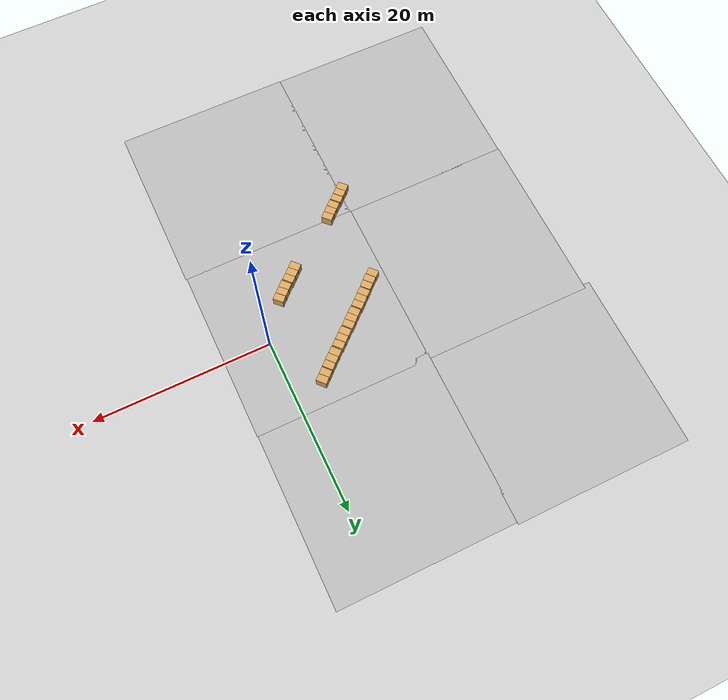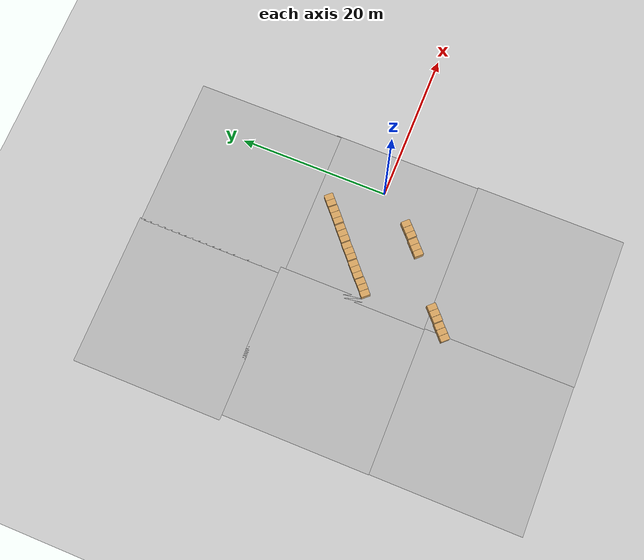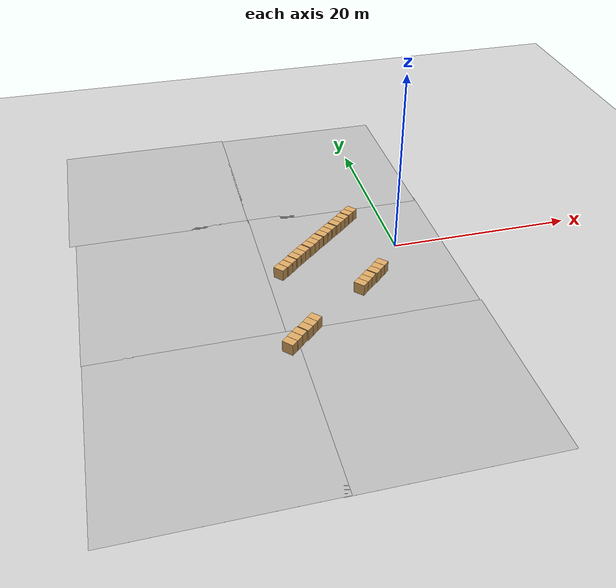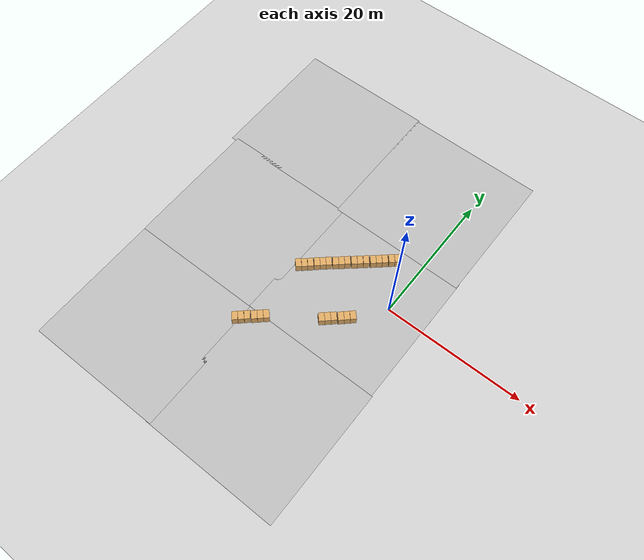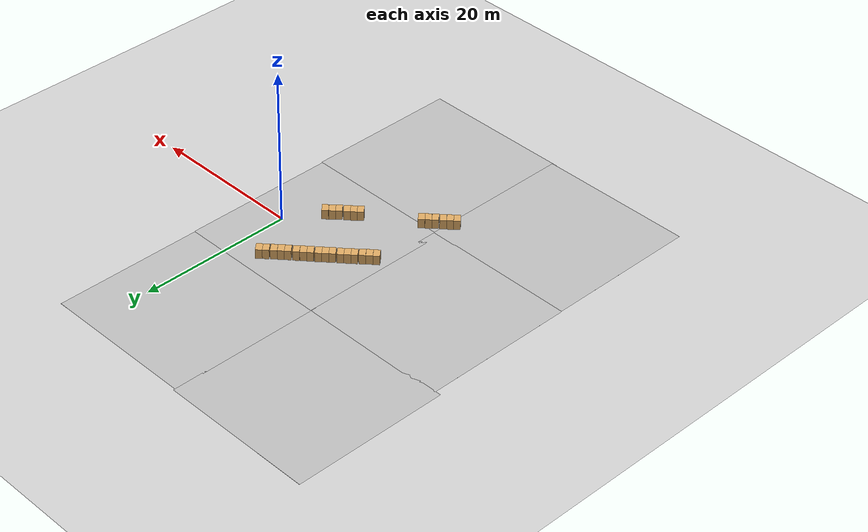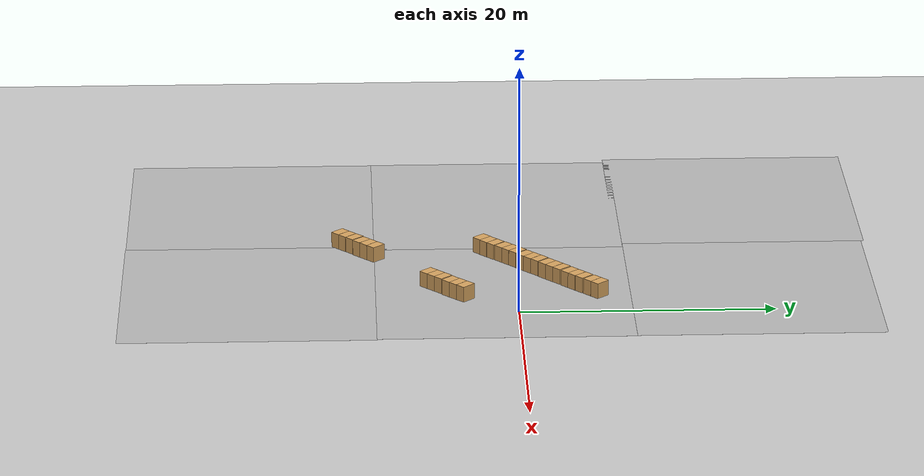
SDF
<sdf version="1.6">
 <world name="default">
  <model name="ground_plane">
   <static>1</static>
   <link name="link">
    <collision name="collision">
     <geometry><plane><normal>0 0 1</normal><size>100 100</size></plane></geometry>
     <surface><friction><ode><mu>100</mu><mu2>50</mu2></ode></friction></surface>
    </collision>
    <visual name="visual">
     <cast_shadows>0</cast_shadows>
     <geometry><plane><normal>0 0 1</normal><size>100 100</size></plane></geometry>
     <material>
      <script><uri>file://media/materials/scripts/gazebo.material</uri><name>Gazebo/Grey</name></script>
     </material>
    </visual>
   </link>
  </model>
  <model name="Floor_room">
   <link name="main">
    <pose>0 0 0.01 0 -0 0</pose>
    <collision name="main_Collision"><geometry><box><size>20 20 0.001</size></box></geometry></collision>
    <visual name="main_Visual">
     <geometry><box><size>20 20 0.001</size></box></geometry>
     <material>
      <script>
       <uri>model://Floor_room/materials/scripts</uri>
       <uri>model://Floor_room/materials/textures</uri>
       <name>floor_room</name>
      </script>
     </material>
    </visual>
   </link>
   <static>1</static>
   <pose>-4.76301 -1.10114 0 0 -0 0</pose>
  </model>
  <model name="Floor_room_0">
   <link name="main">
    <pose>0 0 0.01 0 -0 0</pose>
    <collision name="main_Collision"><geometry><box><size>20 20 0.001</size></box></geometry></collision>
    <visual name="main_Visual">
     <geometry><box><size>20 20 0.001</size></box></geometry>
     <material>
      <script>
       <uri>model://Floor_room/materials/scripts</uri>
       <uri>model://Floor_room/materials/textures</uri>
       <name>floor_room</name>
      </script>
     </material>
    </visual>
   </link>
   <static>1</static>
   <pose>-4.62785 -21.0624 0 0 -0 0</pose>
  </model>
  <model name="Floor_room_0_clone_2">
   <link name="main">
    <pose>0 0 0.01 0 -0 0</pose>
    <collision name="main_Collision"><geometry><box><size>20 20 0.001</size></box></geometry></collision>
    <visual name="main_Visual">
     <geometry><box><size>20 20 0.001</size></box></geometry>
     <material>
      <script>
       <uri>model://Floor_room/materials/scripts</uri>
       <uri>model://Floor_room/materials/textures</uri>
       <name>floor_room</name>
      </script>
     </material>
    </visual>
   </link>
   <static>1</static>
   <pose>-4.83743 18.2019 0 0 -0 0</pose>
  </model>
  <model name="Floor_room_0_clone_3">
   <link name="main">
    <pose>0 0 0.01 0 -0 0</pose>
    <collision name="main_Collision"><geometry><box><size>20 20 0.001</size></box></geometry></collision>
    <visual name="main_Visual">
     <geometry><box><size>20 20 0.001</size></box></geometry>
     <material>
      <script>
       <uri>model://Floor_room/materials/scripts</uri>
       <uri>model://Floor_room/materials/textures</uri>
       <name>floor_room</name>
      </script>
     </material>
    </visual>
   </link>
   <static>1</static>
   <pose>-23.9194 -21.0125 0 0 -0 0</pose>
  </model>
  <model name="Floor_room_0_clone_4">
   <link name="main">
    <pose>0 0 0.01 0 -0 0</pose>
    <collision name="main_Collision"><geometry><box><size>20 20 0.001</size></box></geometry></collision>
    <visual name="main_Visual">
     <geometry><box><size>20 20 0.001</size></box></geometry>
     <material>
      <script>
       <uri>model://Floor_room/materials/scripts</uri>
       <uri>model://Floor_room/materials/textures</uri>
       <name>floor_room</name>
      </script>
     </material>
    </visual>
   </link>
   <static>1</static>
   <pose>-23.9755 -1.11735 0 0 -0 0</pose>
  </model>
  <model name="Floor_room_0_clone_5">
   <link name="main">
    <pose>0 0 0.01 0 -0 0</pose>
    <collision name="main_Collision"><geometry><box><size>20 20 0.001</size></box></geometry></collision>
    <visual name="main_Visual">
     <geometry><box><size>20 20 0.001</size></box></geometry>
     <material>
      <script>
       <uri>model://Floor_room/materials/scripts</uri>
       <uri>model://Floor_room/materials/textures</uri>
       <name>floor_room</name>
      </script>
     </material>
    </visual>
   </link>
   <static>1</static>
   <pose>-24.6874 18.4261 0 0 -0 0</pose>
  </model>
  <model name="Big box 4_clone_1_clone_clone_3_clone_clone_1_clone_0_clone_clone_3_clone_0">
   <pose>-14.9655 -13.7703 0.635484 -0.001251 0.000808 -0.822952</pose>
   <static>0</static>
   <link name="link">
    <inertial>
     <mass>40</mass>
     <inertia><ixx>1</ixx><ixy>0</ixy><ixz>0</ixz><iyy>1</iyy><iyz>0</iyz><izz>1</izz></inertia>
    </inertial>
    <collision name="collision">
     <geometry><box><size>1.2 0.8 1.25</size></box></geometry>
     <surface><contact><ode><max_vel>0.1</max_vel><min_depth>0.001</min_depth></ode></contact></surface>
    </collision>
    <visual name="visual">
     <geometry><box><size>1.20 0.80 1.25</size></box></geometry>
     <material>
      <ambient>0.72 0.55 0.32 1</ambient>
      <diffuse>0.85 0.65 0.38 1</diffuse>
      <specular>0.1 0.1 0.1 1</specular>
     </material>
    </visual>
   </link>
  </model>
  <model name="Big box 4_clone_1_clone_clone_3_clone_clone_1_clone_0_clone_clone_3_clone_2">
   <pose>-13.7802 -12.6601 0.634999 -4e-06 -0.00083 -0.815678</pose>
   <static>0</static>
   <link name="link">
    <inertial>
     <mass>40</mass>
     <inertia><ixx>1</ixx><ixy>0</ixy><ixz>0</ixz><iyy>1</iyy><iyz>0</iyz><izz>1</izz></inertia>
    </inertial>
    <collision name="collision">
     <geometry><box><size>1.2 0.8 1.25</size></box></geometry>
     <surface><contact><ode><max_vel>0.1</max_vel><min_depth>0.001</min_depth></ode></contact></surface>
    </collision>
    <visual name="visual">
     <geometry><box><size>1.20 0.80 1.25</size></box></geometry>
     <material>
      <ambient>0.72 0.55 0.32 1</ambient>
      <diffuse>0.85 0.65 0.38 1</diffuse>
      <specular>0.1 0.1 0.1 1</specular>
     </material>
    </visual>
   </link>
  </model>
  <model name="Big box 4_clone_1_clone_clone_3_clone_clone_1_clone_0_clone_clone_3_clone_3">
   <pose>-13.0795 -12.0943 0.635015 0.001245 2.9e-05 -0.825603</pose>
   <static>0</static>
   <link name="link">
    <inertial>
     <mass>40</mass>
     <inertia><ixx>1</ixx><ixy>0</ixy><ixz>0</ixz><iyy>1</iyy><iyz>0</iyz><izz>1</izz></inertia>
    </inertial>
    <collision name="collision">
     <geometry><box><size>1.2 0.8 1.25</size></box></geometry>
     <surface><contact><ode><max_vel>0.1</max_vel><min_depth>0.001</min_depth></ode></contact></surface>
    </collision>
    <visual name="visual">
     <geometry><box><size>1.20 0.80 1.25</size></box></geometry>
     <material>
      <ambient>0.72 0.55 0.32 1</ambient>
      <diffuse>0.85 0.65 0.38 1</diffuse>
      <specular>0.1 0.1 0.1 1</specular>
     </material>
    </visual>
   </link>
  </model>
  <model name="Big box 4_clone_1_clone_clone_3_clone_clone_1_clone_0_clone_clone_3_clone_5">
   <pose>-12.4895 -11.5448 0.635491 -1.5e-05 1e-06 -0.814935</pose>
   <static>0</static>
   <link name="link">
    <inertial>
     <mass>40</mass>
     <inertia><ixx>1</ixx><ixy>0</ixy><ixz>0</ixz><iyy>1</iyy><iyz>0</iyz><izz>1</izz></inertia>
    </inertial>
    <collision name="collision">
     <geometry><box><size>1.2 0.8 1.25</size></box></geometry>
     <surface><contact><ode><max_vel>0.1</max_vel><min_depth>0.001</min_depth></ode></contact></surface>
    </collision>
    <visual name="visual">
     <geometry><box><size>1.20 0.80 1.25</size></box></geometry>
     <material>
      <ambient>0.72 0.55 0.32 1</ambient>
      <diffuse>0.85 0.65 0.38 1</diffuse>
      <specular>0.1 0.1 0.1 1</specular>
     </material>
    </visual>
   </link>
  </model>
  <model name="Big box 4_clone_1_clone_clone_3_clone_clone_1_clone_0_clone_clone_3_clone_4">
   <pose>-11.9042 -10.9927 0.635115 -0.000607 0.00062 -0.815722</pose>
   <static>0</static>
   <link name="link">
    <inertial>
     <mass>40</mass>
     <inertia><ixx>1</ixx><ixy>0</ixy><ixz>0</ixz><iyy>1</iyy><iyz>0</iyz><izz>1</izz></inertia>
    </inertial>
    <collision name="collision">
     <geometry><box><size>1.2 0.8 1.25</size></box></geometry>
     <surface><contact><ode><max_vel>0.1</max_vel><min_depth>0.001</min_depth></ode></contact></surface>
    </collision>
    <visual name="visual">
     <geometry><box><size>1.20 0.80 1.25</size></box></geometry>
     <material>
      <ambient>0.72 0.55 0.32 1</ambient>
      <diffuse>0.85 0.65 0.38 1</diffuse>
      <specular>0.1 0.1 0.1 1</specular>
     </material>
    </visual>
   </link>
  </model>
  <model name="Big box 4_clone_1_clone_clone_3_clone_clone_1_clone_0_clone_clone_3_clone_1">
   <pose>-14.3695 -13.2241 0.635492 1.9e-05 -0 -0.815638</pose>
   <static>0</static>
   <link name="link">
    <inertial>
     <mass>40</mass>
     <inertia><ixx>1</ixx><ixy>0</ixy><ixz>0</ixz><iyy>1</iyy><iyz>0</iyz><izz>1</izz></inertia>
    </inertial>
    <collision name="collision">
     <geometry><box><size>1.2 0.8 1.25</size></box></geometry>
     <surface><contact><ode><max_vel>0.1</max_vel><min_depth>0.001</min_depth></ode></contact></surface>
    </collision>
    <visual name="visual">
     <geometry><box><size>1.20 0.80 1.25</size></box></geometry>
     <material>
      <ambient>0.72 0.55 0.32 1</ambient>
      <diffuse>0.85 0.65 0.38 1</diffuse>
      <specular>0.1 0.1 0.1 1</specular>
     </material>
    </visual>
   </link>
  </model>
  <model name="big_box3_0_clone_clone_clone_clone_clone_clone_clone">
   <pose>-4.13717 -5.1949 0.635409 -0.001026 -0.000833 -0.806812</pose>
   <static>0</static>
   <link name="link">
    <inertial>
     <mass>40</mass>
     <inertia><ixx>1</ixx><ixy>0</ixy><ixz>0</ixz><iyy>1</iyy><iyz>0</iyz><izz>1</izz></inertia>
    </inertial>
    <collision name="collision">
     <geometry><box><size>1.2 0.8 1.25</size></box></geometry>
     <surface><contact><ode><max_vel>0.1</max_vel><min_depth>0.001</min_depth></ode></contact></surface>
    </collision>
    <visual name="visual">
     <geometry><box><size>1.20 0.80 1.25</size></box></geometry>
     <material>
      <ambient>0.72 0.55 0.32 1</ambient>
      <diffuse>0.85 0.65 0.38 1</diffuse>
      <specular>0.1 0.1 0.1 1</specular>
     </material>
    </visual>
   </link>
  </model>
  <model name="big_box3_0_clone_clone_clone_clone_clone_clone_clone_0">
   <pose>-3.55954 -4.64161 0.635163 -0.000435 -0.000816 -0.807648</pose>
   <static>0</static>
   <link name="link">
    <inertial>
     <mass>40</mass>
     <inertia><ixx>1</ixx><ixy>0</ixy><ixz>0</ixz><iyy>1</iyy><iyz>0</iyz><izz>1</izz></inertia>
    </inertial>
    <collision name="collision">
     <geometry><box><size>1.2 0.8 1.25</size></box></geometry>
     <surface><contact><ode><max_vel>0.1</max_vel><min_depth>0.001</min_depth></ode></contact></surface>
    </collision>
    <visual name="visual">
     <geometry><box><size>1.20 0.80 1.25</size></box></geometry>
     <material>
      <ambient>0.72 0.55 0.32 1</ambient>
      <diffuse>0.85 0.65 0.38 1</diffuse>
      <specular>0.1 0.1 0.1 1</specular>
     </material>
    </visual>
   </link>
  </model>
  <model name="big_box3_0_clone_clone_clone_clone_clone_clone_clone_clone_0">
   <pose>-6.01856 -6.87089 0.635486 -0.001027 -0.000706 -0.815375</pose>
   <static>0</static>
   <link name="link">
    <inertial>
     <mass>40</mass>
     <inertia><ixx>1</ixx><ixy>0</ixy><ixz>0</ixz><iyy>1</iyy><iyz>0</iyz><izz>1</izz></inertia>
    </inertial>
    <collision name="collision">
     <geometry><box><size>1.2 0.8 1.25</size></box></geometry>
     <surface><contact><ode><max_vel>0.1</max_vel><min_depth>0.001</min_depth></ode></contact></surface>
    </collision>
    <visual name="visual">
     <geometry><box><size>1.20 0.80 1.25</size></box></geometry>
     <material>
      <ambient>0.72 0.55 0.32 1</ambient>
      <diffuse>0.85 0.65 0.38 1</diffuse>
      <specular>0.1 0.1 0.1 1</specular>
     </material>
    </visual>
   </link>
  </model>
  <model name="big_box3_0_clone_clone_clone_clone_clone_clone_clone_clone_1">
   <pose>-5.43398 -6.32551 0.635439 -0.001103 -0.000833 -0.816094</pose>
   <static>0</static>
   <link name="link">
    <inertial>
     <mass>40</mass>
     <inertia><ixx>1</ixx><ixy>0</ixy><ixz>0</ixz><iyy>1</iyy><iyz>0</iyz><izz>1</izz></inertia>
    </inertial>
    <collision name="collision">
     <geometry><box><size>1.2 0.8 1.25</size></box></geometry>
     <surface><contact><ode><max_vel>0.1</max_vel><min_depth>0.001</min_depth></ode></contact></surface>
    </collision>
    <visual name="visual">
     <geometry><box><size>1.20 0.80 1.25</size></box></geometry>
     <material>
      <ambient>0.72 0.55 0.32 1</ambient>
      <diffuse>0.85 0.65 0.38 1</diffuse>
      <specular>0.1 0.1 0.1 1</specular>
     </material>
    </visual>
   </link>
  </model>
  <model name="big_box3_0_clone_clone_clone_clone_clone_clone_clone_clone">
   <pose>-4.84997 -5.77919 0.635309 -0.000777 -0.000831 -0.816933</pose>
   <static>0</static>
   <link name="link">
    <inertial>
     <mass>40</mass>
     <inertia><ixx>1</ixx><ixy>0</ixy><ixz>0</ixz><iyy>1</iyy><iyz>0</iyz><izz>1</izz></inertia>
    </inertial>
    <collision name="collision">
     <geometry><box><size>1.2 0.8 1.25</size></box></geometry>
     <surface><contact><ode><max_vel>0.1</max_vel><min_depth>0.001</min_depth></ode></contact></surface>
    </collision>
    <visual name="visual">
     <geometry><box><size>1.20 0.80 1.25</size></box></geometry>
     <material>
      <ambient>0.72 0.55 0.32 1</ambient>
      <diffuse>0.85 0.65 0.38 1</diffuse>
      <specular>0.1 0.1 0.1 1</specular>
     </material>
    </visual>
   </link>
  </model>
  <model name="big_box3_0_clone_clone_clone_clone_clone_clone_clone_clone_2">
   <pose>-2.97349 -4.08054 0.634999 2.3e-05 -0.000818 -0.807953</pose>
   <static>0</static>
   <link name="link">
    <inertial>
     <mass>40</mass>
     <inertia><ixx>1</ixx><ixy>0</ixy><ixz>0</ixz><iyy>1</iyy><iyz>0</iyz><izz>1</izz></inertia>
    </inertial>
    <collision name="collision">
     <geometry><box><size>1.2 0.8 1.25</size></box></geometry>
     <surface><contact><ode><max_vel>0.1</max_vel><min_depth>0.001</min_depth></ode></contact></surface>
    </collision>
    <visual name="visual">
     <geometry><box><size>1.20 0.80 1.25</size></box></geometry>
     <material>
      <ambient>0.72 0.55 0.32 1</ambient>
      <diffuse>0.85 0.65 0.38 1</diffuse>
      <specular>0.1 0.1 0.1 1</specular>
     </material>
    </visual>
   </link>
  </model>
  <model name="Big box 4_clone_1_clone_clone_3_clone_clone_1_clone_0_clone_0_clone_17">
   <pose>-7.73658 2.53548 0.635002 -1.9e-05 -0.000825 -0.838988</pose>
   <static>0</static>
   <link name="link">
    <inertial>
     <mass>40</mass>
     <inertia><ixx>1</ixx><ixy>0</ixy><ixz>0</ixz><iyy>1</iyy><iyz>0</iyz><izz>1</izz></inertia>
    </inertial>
    <collision name="collision">
     <geometry><box><size>1.2 0.8 1.25</size></box></geometry>
     <surface><contact><ode><max_vel>0.1</max_vel><min_depth>0.001</min_depth></ode></contact></surface>
    </collision>
    <visual name="visual">
     <geometry><box><size>1.20 0.80 1.25</size></box></geometry>
     <material>
      <ambient>0.72 0.55 0.32 1</ambient>
      <diffuse>0.85 0.65 0.38 1</diffuse>
      <specular>0.1 0.1 0.1 1</specular>
     </material>
    </visual>
   </link>
  </model>
  <model name="Big box 4_clone_1_clone_clone_3_clone_clone_1_clone_0_clone_0_clone_17_clone">
   <pose>-7.13852 3.06749 0.634991 1.5e-05 -0.000811 -0.839532</pose>
   <static>0</static>
   <link name="link">
    <inertial>
     <mass>40</mass>
     <inertia><ixx>1</ixx><ixy>0</ixy><ixz>0</ixz><iyy>1</iyy><iyz>0</iyz><izz>1</izz></inertia>
    </inertial>
    <collision name="collision">
     <geometry><box><size>1.2 0.8 1.25</size></box></geometry>
     <surface><contact><ode><max_vel>0.1</max_vel><min_depth>0.001</min_depth></ode></contact></surface>
    </collision>
    <visual name="visual">
     <geometry><box><size>1.20 0.80 1.25</size></box></geometry>
     <material>
      <ambient>0.72 0.55 0.32 1</ambient>
      <diffuse>0.85 0.65 0.38 1</diffuse>
      <specular>0.1 0.1 0.1 1</specular>
     </material>
    </visual>
   </link>
  </model>
  <model name="Big box 4_clone_1_clone_clone_3_clone_clone_1_clone_0_clone_0_clone_17_clone_0">
   <pose>-6.52886 3.61701 0.634985 7e-06 -0.000806 -0.839529</pose>
   <static>0</static>
   <link name="link">
    <inertial>
     <mass>40</mass>
     <inertia><ixx>1</ixx><ixy>0</ixy><ixz>0</ixz><iyy>1</iyy><iyz>0</iyz><izz>1</izz></inertia>
    </inertial>
    <collision name="collision">
     <geometry><box><size>1.2 0.8 1.25</size></box></geometry>
     <surface><contact><ode><max_vel>0.1</max_vel><min_depth>0.001</min_depth></ode></contact></surface>
    </collision>
    <visual name="visual">
     <geometry><box><size>1.20 0.80 1.25</size></box></geometry>
     <material>
      <ambient>0.72 0.55 0.32 1</ambient>
      <diffuse>0.85 0.65 0.38 1</diffuse>
      <specular>0.1 0.1 0.1 1</specular>
     </material>
    </visual>
   </link>
  </model>
  <model name="Big box 4_clone_1_clone_clone_3_clone_clone_1_clone_0_clone_0_clone_17_clone_1">
   <pose>-5.80502 4.22074 0.635152 -0.000397 -0.000823 -0.842643</pose>
   <static>0</static>
   <link name="link">
    <inertial>
     <mass>40</mass>
     <inertia><ixx>1</ixx><ixy>0</ixy><ixz>0</ixz><iyy>1</iyy><iyz>0</iyz><izz>1</izz></inertia>
    </inertial>
    <collision name="collision">
     <geometry><box><size>1.2 0.8 1.25</size></box></geometry>
     <surface><contact><ode><max_vel>0.1</max_vel><min_depth>0.001</min_depth></ode></contact></surface>
    </collision>
    <visual name="visual">
     <geometry><box><size>1.20 0.80 1.25</size></box></geometry>
     <material>
      <ambient>0.72 0.55 0.32 1</ambient>
      <diffuse>0.85 0.65 0.38 1</diffuse>
      <specular>0.1 0.1 0.1 1</specular>
     </material>
    </visual>
   </link>
  </model>
  <model name="Big box 4_clone_1_clone_clone_3_clone_clone_1_clone_0_clone_0_clone_17_clone_2">
   <pose>-5.205 4.74932 0.635322 -0.00081 -0.000832 -0.842847</pose>
   <static>0</static>
   <link name="link">
    <inertial>
     <mass>40</mass>
     <inertia><ixx>1</ixx><ixy>0</ixy><ixz>0</ixz><iyy>1</iyy><iyz>0</iyz><izz>1</izz></inertia>
    </inertial>
    <collision name="collision">
     <geometry><box><size>1.2 0.8 1.25</size></box></geometry>
     <surface><contact><ode><max_vel>0.1</max_vel><min_depth>0.001</min_depth></ode></contact></surface>
    </collision>
    <visual name="visual">
     <geometry><box><size>1.20 0.80 1.25</size></box></geometry>
     <material>
      <ambient>0.72 0.55 0.32 1</ambient>
      <diffuse>0.85 0.65 0.38 1</diffuse>
      <specular>0.1 0.1 0.1 1</specular>
     </material>
    </visual>
   </link>
  </model>
  <model name="Big box 4_clone_1_clone_clone_3_clone_clone_1_clone_0_clone_0_clone_17_clone_3">
   <pose>-4.6037 5.29396 0.635 1.9e-05 -0.00082 -0.83952</pose>
   <static>0</static>
   <link name="link">
    <inertial>
     <mass>40</mass>
     <inertia><ixx>1</ixx><ixy>0</ixy><ixz>0</ixz><iyy>1</iyy><iyz>0</iyz><izz>1</izz></inertia>
    </inertial>
    <collision name="collision">
     <geometry><box><size>1.2 0.8 1.25</size></box></geometry>
     <surface><contact><ode><max_vel>0.1</max_vel><min_depth>0.001</min_depth></ode></contact></surface>
    </collision>
    <visual name="visual">
     <geometry><box><size>1.20 0.80 1.25</size></box></geometry>
     <material>
      <ambient>0.72 0.55 0.32 1</ambient>
      <diffuse>0.85 0.65 0.38 1</diffuse>
      <specular>0.1 0.1 0.1 1</specular>
     </material>
    </visual>
   </link>
  </model>
  <model name="Big box 4_clone_1_clone_clone_3_clone_clone_1_clone_0_clone_0_clone_17_clone_4">
   <pose>-3.93897 5.9055 0.635079 -0.000332 -0.000744 -0.843604</pose>
   <static>0</static>
   <link name="link">
    <inertial>
     <mass>40</mass>
     <inertia><ixx>1</ixx><ixy>0</ixy><ixz>0</ixz><iyy>1</iyy><iyz>0</iyz><izz>1</izz></inertia>
    </inertial>
    <collision name="collision">
     <geometry><box><size>1.2 0.8 1.25</size></box></geometry>
     <surface><contact><ode><max_vel>0.1</max_vel><min_depth>0.001</min_depth></ode></contact></surface>
    </collision>
    <visual name="visual">
     <geometry><box><size>1.20 0.80 1.25</size></box></geometry>
     <material>
      <ambient>0.72 0.55 0.32 1</ambient>
      <diffuse>0.85 0.65 0.38 1</diffuse>
      <specular>0.1 0.1 0.1 1</specular>
     </material>
    </visual>
   </link>
  </model>
  <model name="Big box 4_clone_1_clone_clone_3_clone_clone_1_clone_0_clone_0_clone_17_clone_5">
   <pose>-3.33894 6.44046 0.63499 1.3e-05 -0.00081 -0.839514</pose>
   <static>0</static>
   <link name="link">
    <inertial>
     <mass>40</mass>
     <inertia><ixx>1</ixx><ixy>0</ixy><ixz>0</ixz><iyy>1</iyy><iyz>0</iyz><izz>1</izz></inertia>
    </inertial>
    <collision name="collision">
     <geometry><box><size>1.2 0.8 1.25</size></box></geometry>
     <surface><contact><ode><max_vel>0.1</max_vel><min_depth>0.001</min_depth></ode></contact></surface>
    </collision>
    <visual name="visual">
     <geometry><box><size>1.20 0.80 1.25</size></box></geometry>
     <material>
      <ambient>0.72 0.55 0.32 1</ambient>
      <diffuse>0.85 0.65 0.38 1</diffuse>
      <specular>0.1 0.1 0.1 1</specular>
     </material>
    </visual>
   </link>
  </model>
  <model name="Big box 4_clone_1_clone_clone_3_clone_clone_1_clone_0_clone_0_clone_17_clone_7">
   <pose>-11.5235 -0.774689 0.635399 -0.00059 -0.000473 -0.84277</pose>
   <static>0</static>
   <link name="link">
    <inertial>
     <mass>40</mass>
     <inertia><ixx>1</ixx><ixy>0</ixy><ixz>0</ixz><iyy>1</iyy><iyz>0</iyz><izz>1</izz></inertia>
    </inertial>
    <collision name="collision">
     <geometry><box><size>1.2 0.8 1.25</size></box></geometry>
     <surface><contact><ode><max_vel>0.1</max_vel><min_depth>0.001</min_depth></ode></contact></surface>
    </collision>
    <visual name="visual">
     <geometry><box><size>1.20 0.80 1.25</size></box></geometry>
     <material>
      <ambient>0.72 0.55 0.32 1</ambient>
      <diffuse>0.85 0.65 0.38 1</diffuse>
      <specular>0.1 0.1 0.1 1</specular>
     </material>
    </visual>
   </link>
  </model>
  <model name="Big box 4_clone_1_clone_clone_3_clone_clone_1_clone_0_clone_0_clone_17_clone_8">
   <pose>-10.9227 -0.247104 0.635231 -0.000581 -0.000833 -0.843607</pose>
   <static>0</static>
   <link name="link">
    <inertial>
     <mass>40</mass>
     <inertia><ixx>1</ixx><ixy>0</ixy><ixz>0</ixz><iyy>1</iyy><iyz>0</iyz><izz>1</izz></inertia>
    </inertial>
    <collision name="collision">
     <geometry><box><size>1.2 0.8 1.25</size></box></geometry>
     <surface><contact><ode><max_vel>0.1</max_vel><min_depth>0.001</min_depth></ode></contact></surface>
    </collision>
    <visual name="visual">
     <geometry><box><size>1.20 0.80 1.25</size></box></geometry>
     <material>
      <ambient>0.72 0.55 0.32 1</ambient>
      <diffuse>0.85 0.65 0.38 1</diffuse>
      <specular>0.1 0.1 0.1 1</specular>
     </material>
    </visual>
   </link>
  </model>
  <model name="Big box 4_clone_1_clone_clone_3_clone_clone_1_clone_0_clone_0_clone_17_clone_9">
   <pose>-10.3347 0.295118 0.635349 -0.000883 -0.000828 -0.843712</pose>
   <static>0</static>
   <link name="link">
    <inertial>
     <mass>40</mass>
     <inertia><ixx>1</ixx><ixy>0</ixy><ixz>0</ixz><iyy>1</iyy><iyz>0</iyz><izz>1</izz></inertia>
    </inertial>
    <collision name="collision">
     <geometry><box><size>1.2 0.8 1.25</size></box></geometry>
     <surface><contact><ode><max_vel>0.1</max_vel><min_depth>0.001</min_depth></ode></contact></surface>
    </collision>
    <visual name="visual">
     <geometry><box><size>1.20 0.80 1.25</size></box></geometry>
     <material>
      <ambient>0.72 0.55 0.32 1</ambient>
      <diffuse>0.85 0.65 0.38 1</diffuse>
      <specular>0.1 0.1 0.1 1</specular>
     </material>
    </visual>
   </link>
  </model>
  <model name="Big box 4_clone_1_clone_clone_3_clone_clone_1_clone_0_clone_0_clone_17_clone_10">
   <pose>-9.62684 0.875332 0.635273 0.000272 -0.000552 -0.845763</pose>
   <static>0</static>
   <link name="link">
    <inertial>
     <mass>40</mass>
     <inertia><ixx>1</ixx><ixy>0</ixy><ixz>0</ixz><iyy>1</iyy><iyz>0</iyz><izz>1</izz></inertia>
    </inertial>
    <collision name="collision">
     <geometry><box><size>1.2 0.8 1.25</size></box></geometry>
     <surface><contact><ode><max_vel>0.1</max_vel><min_depth>0.001</min_depth></ode></contact></surface>
    </collision>
    <visual name="visual">
     <geometry><box><size>1.20 0.80 1.25</size></box></geometry>
     <material>
      <ambient>0.72 0.55 0.32 1</ambient>
      <diffuse>0.85 0.65 0.38 1</diffuse>
      <specular>0.1 0.1 0.1 1</specular>
     </material>
    </visual>
   </link>
  </model>
  <model name="Big box 4_clone_1_clone_clone_3_clone_clone_1_clone_0_clone_0_clone_17_clone_11">
   <pose>-9.03115 1.40865 0.635183 -0.000464 -0.00083 -0.845764</pose>
   <static>0</static>
   <link name="link">
    <inertial>
     <mass>40</mass>
     <inertia><ixx>1</ixx><ixy>0</ixy><ixz>0</ixz><iyy>1</iyy><iyz>0</iyz><izz>1</izz></inertia>
    </inertial>
    <collision name="collision">
     <geometry><box><size>1.2 0.8 1.25</size></box></geometry>
     <surface><contact><ode><max_vel>0.1</max_vel><min_depth>0.001</min_depth></ode></contact></surface>
    </collision>
    <visual name="visual">
     <geometry><box><size>1.20 0.80 1.25</size></box></geometry>
     <material>
      <ambient>0.72 0.55 0.32 1</ambient>
      <diffuse>0.85 0.65 0.38 1</diffuse>
      <specular>0.1 0.1 0.1 1</specular>
     </material>
    </visual>
   </link>
  </model>
  <model name="Big box 4_clone_1_clone_clone_3_clone_clone_1_clone_0_clone_0_clone_17_clone_12">
   <pose>-8.44268 1.9582 0.635002 8e-06 -0.000826 -0.839492</pose>
   <static>0</static>
   <link name="link">
    <inertial>
     <mass>40</mass>
     <inertia><ixx>1</ixx><ixy>0</ixy><ixz>0</ixz><iyy>1</iyy><iyz>0</iyz><izz>1</izz></inertia>
    </inertial>
    <collision name="collision">
     <geometry><box><size>1.2 0.8 1.25</size></box></geometry>
     <surface><contact><ode><max_vel>0.1</max_vel><min_depth>0.001</min_depth></ode></contact></surface>
    </collision>
    <visual name="visual">
     <geometry><box><size>1.20 0.80 1.25</size></box></geometry>
     <material>
      <ambient>0.72 0.55 0.32 1</ambient>
      <diffuse>0.85 0.65 0.38 1</diffuse>
      <specular>0.1 0.1 0.1 1</specular>
     </material>
    </visual>
   </link>
  </model>
  <model name="Big box 4_clone_1_clone_clone_3_clone_clone_1_clone_0_clone_0_clone_17_clone_13">
   <pose>-13.3883 -2.45981 0.63509 7e-06 -0.000678 -0.843713</pose>
   <static>0</static>
   <link name="link">
    <inertial>
     <mass>40</mass>
     <inertia><ixx>1</ixx><ixy>0</ixy><ixz>0</ixz><iyy>1</iyy><iyz>0</iyz><izz>1</izz></inertia>
    </inertial>
    <collision name="collision">
     <geometry><box><size>1.2 0.8 1.25</size></box></geometry>
     <surface><contact><ode><max_vel>0.1</max_vel><min_depth>0.001</min_depth></ode></contact></surface>
    </collision>
    <visual name="visual">
     <geometry><box><size>1.20 0.80 1.25</size></box></geometry>
     <material>
      <ambient>0.72 0.55 0.32 1</ambient>
      <diffuse>0.85 0.65 0.38 1</diffuse>
      <specular>0.1 0.1 0.1 1</specular>
     </material>
    </visual>
   </link>
  </model>
  <model name="Big box 4_clone_1_clone_clone_3_clone_clone_1_clone_0_clone_0_clone_17_clone_15">
   <pose>-12.1594 -1.38782 0.634991 1.4e-05 -0.000811 -0.839484</pose>
   <static>0</static>
   <link name="link">
    <inertial>
     <mass>40</mass>
     <inertia><ixx>1</ixx><ixy>0</ixy><ixz>0</ixz><iyy>1</iyy><iyz>0</iyz><izz>1</izz></inertia>
    </inertial>
    <collision name="collision">
     <geometry><box><size>1.2 0.8 1.25</size></box></geometry>
     <surface><contact><ode><max_vel>0.1</max_vel><min_depth>0.001</min_depth></ode></contact></surface>
    </collision>
    <visual name="visual">
     <geometry><box><size>1.20 0.80 1.25</size></box></geometry>
     <material>
      <ambient>0.72 0.55 0.32 1</ambient>
      <diffuse>0.85 0.65 0.38 1</diffuse>
      <specular>0.1 0.1 0.1 1</specular>
     </material>
    </visual>
   </link>
  </model>
  <model name="Big box 4_clone_1_clone_clone_3_clone_clone_1_clone_0_clone_0_clone_17_clone_14">
   <pose>-12.762 -1.93984 0.634985 3e-06 -0.000801 -0.839477</pose>
   <static>0</static>
   <link name="link">
    <inertial>
     <mass>40</mass>
     <inertia><ixx>1</ixx><ixy>0</ixy><ixz>0</ixz><iyy>1</iyy><iyz>0</iyz><izz>1</izz></inertia>
    </inertial>
    <collision name="collision">
     <geometry><box><size>1.2 0.8 1.25</size></box></geometry>
     <surface><contact><ode><max_vel>0.1</max_vel><min_depth>0.001</min_depth></ode></contact></surface>
    </collision>
    <visual name="visual">
     <geometry><box><size>1.20 0.80 1.25</size></box></geometry>
     <material>
      <ambient>0.72 0.55 0.32 1</ambient>
      <diffuse>0.85 0.65 0.38 1</diffuse>
      <specular>0.1 0.1 0.1 1</specular>
     </material>
    </visual>
   </link>
  </model>
 </world>
</sdf>
